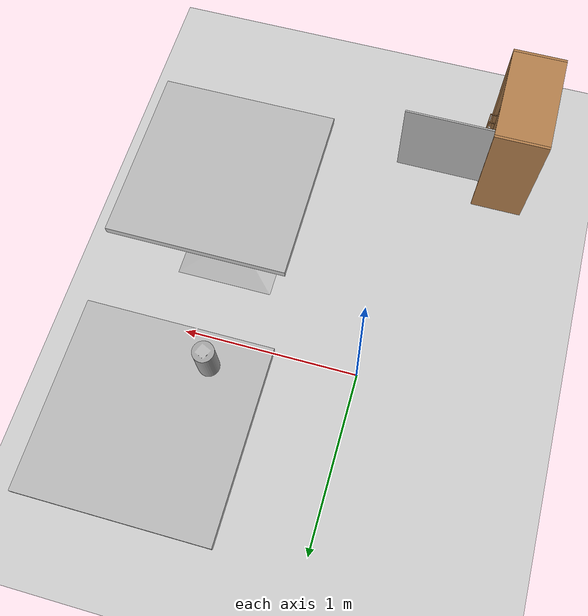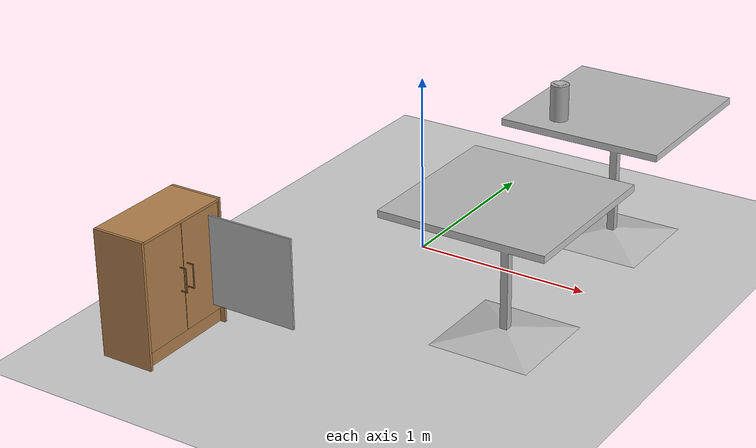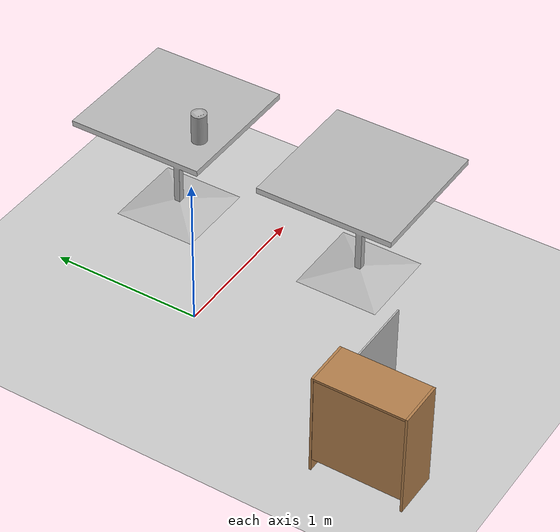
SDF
<sdf version="1.6">
 <world name="default">
  <light name="sun" type="directional">
   <pose>0 0 10 0 -0 0</pose>
   <diffuse>0.8 0.8 0.8 1</diffuse>
   <specular>0.2 0.2 0.2 1</specular>
   <attenuation>
    <range>1000</range>
    <constant>0.9</constant>
    <linear>0.01</linear>
    <quadratic>0.001</quadratic>
   </attenuation>
   <direction>-0.5 0.1 -0.9</direction>
  </light>
  <physics name="dart_1ms" default="1" type="dart">
   <max_step_size>0.001</max_step_size>
   <real_time_factor>1</real_time_factor>
   <real_time_update_rate>1000</real_time_update_rate>
   <dart><solver><solver_type>pgs</solver_type></solver></dart>
  </physics>
  <physics name="dart_2ms" default="0" type="dart">
   <max_step_size>0.002</max_step_size>
   <real_time_factor>1</real_time_factor>
   <real_time_update_rate>500</real_time_update_rate>
   <dart><solver><solver_type>pgs</solver_type></solver></dart>
  </physics>
  <physics name="dart_3ms" default="0" type="dart">
   <max_step_size>0.003</max_step_size>
   <real_time_factor>1</real_time_factor>
   <real_time_update_rate>333</real_time_update_rate>
   <dart><solver><solver_type>pgs</solver_type></solver></dart>
  </physics>
  <physics name="ode_1ms" default="0" type="ode">
   <max_step_size>0.001</max_step_size>
   <real_time_factor>1</real_time_factor>
   <real_time_update_rate>1000</real_time_update_rate>
  </physics>
  <physics name="ode_2ms" default="0" type="ode">
   <max_step_size>0.002</max_step_size>
   <real_time_factor>1</real_time_factor>
   <real_time_update_rate>500</real_time_update_rate>
  </physics>
  <physics name="ode_3ms" default="0" type="ode">
   <max_step_size>0.003</max_step_size>
   <real_time_factor>1</real_time_factor>
   <real_time_update_rate>333</real_time_update_rate>
  </physics>
  <model name="ground_plane">
   <static>1</static>
   <link name="link">
    <collision name="collision">
     <geometry><plane><normal>0 0 1</normal><size>100 100</size></plane></geometry>
     <surface><friction><ode><mu>100</mu><mu2>50</mu2></ode></friction></surface>
    </collision>
    <visual name="visual">
     <cast_shadows>0</cast_shadows>
     <geometry><plane><normal>0 0 1</normal><size>100 100</size></plane></geometry>
     <material>
      <script><uri>file://media/materials/scripts/gazebo.material</uri><name>Gazebo/Grey</name></script>
     </material>
    </visual>
   </link>
  </model>
  <gravity>0 0 -9.8</gravity>
  <magnetic_field>6e-06 2.3e-05 -4.2e-05</magnetic_field>
  <atmosphere type="adiabatic"/>
  <scene><ambient>0.4 0.4 0.4 1</ambient><background>0.7 0.7 0.7 1</background><shadows>1</shadows></scene>
  <spherical_coordinates>
   <surface_model>EARTH_WGS84</surface_model>
   <latitude_deg>0</latitude_deg>
   <longitude_deg>0</longitude_deg>
   <elevation>0</elevation>
   <heading_deg>0</heading_deg>
  </spherical_coordinates>
  <model name="cafe_table">
   <static>1</static>
   <link name="link">
    <collision name="surface">
     <pose>0 0 0.755 0 -0 0</pose>
     <geometry><box><size>0.913 0.913 0.04</size></box></geometry>
    </collision>
    <collision name="column">
     <pose>0 0 0.37 0 -0 0</pose>
     <geometry><box><size>0.042 0.042 0.74</size></box></geometry>
    </collision>
    <collision name="base">
     <pose>0 0 0.02 0 -0 0</pose>
     <geometry><box><size>0.56 0.56 0.04</size></box></geometry>
    </collision>
    <visual name="visual">
     <geometry><mesh><uri>model://cafe_table/meshes/cafe_table.dae</uri></mesh></geometry>
    </visual>
   </link>
   <pose>0.822635 0.670654 0 0 -0 0</pose>
  </model>
  <model name="cafe_table_0">
   <static>1</static>
   <link name="link">
    <collision name="surface">
     <pose>0 0 0.755 0 -0 0</pose>
     <geometry><box><size>0.913 0.913 0.04</size></box></geometry>
    </collision>
    <collision name="column">
     <pose>0 0 0.37 0 -0 0</pose>
     <geometry><box><size>0.042 0.042 0.74</size></box></geometry>
    </collision>
    <collision name="base">
     <pose>0 0 0.02 0 -0 0</pose>
     <geometry><box><size>0.56 0.56 0.04</size></box></geometry>
    </collision>
    <visual name="visual">
     <geometry><mesh><uri>model://cafe_table/meshes/cafe_table.dae</uri></mesh></geometry>
    </visual>
   </link>
   <pose>0.884797 -0.621823 0 0 -0 0</pose>
  </model>
  <model name="cabinet_door">
   <link name="cabinet">
    <pose>0 0 0.35 0 -0 0</pose>
    <inertial>
     <mass>16</mass>
     <inertia><ixx>1.59</ixx><ixy>0</ixy><ixz>0</ixz><iyy>1.12</iyy><iyz>0</iyz><izz>0.91</izz></inertia>
    </inertial>
    <collision name="back">
     <pose>-0.14 0 0.035 0 -0 0</pose>
     <geometry><box><size>0.015 0.585 0.6</size></box></geometry>
    </collision>
    <visual name="visual1">
     <pose>-0.14 0 0.035 0 -0 0</pose>
     <geometry><box><size>0.015 0.585 0.6</size></box></geometry>
     <material>
      <script><uri>file://media/materials/scripts/gazebo.material</uri><name>Gazebo/Wood</name></script>
     </material>
    </visual>
    <collision name="left_side">
     <pose>0 -0.2925 0 0 -0 0</pose>
     <geometry><box><size>0.3 0.015 0.7</size></box></geometry>
    </collision>
    <visual name="visual2">
     <pose>0 -0.2925 0 0 -0 0</pose>
     <geometry><box><size>0.3 0.015 0.7</size></box></geometry>
     <material>
      <script><uri>file://media/materials/scripts/gazebo.material</uri><name>Gazebo/Wood</name></script>
     </material>
    </visual>
    <collision name="right_side">
     <pose>0 0.2925 0 0 -0 0</pose>
     <geometry><box><size>0.3 0.015 0.7</size></box></geometry>
    </collision>
    <visual name="visual3">
     <pose>0 0.2925 0 0 -0 0</pose>
     <geometry><box><size>0.3 0.015 0.7</size></box></geometry>
     <material>
      <script><uri>file://media/materials/scripts/gazebo.material</uri><name>Gazebo/Wood</name></script>
     </material>
    </visual>
    <collision name="bottom">
     <pose>-0.002 0 -0.2525 0 -0 0</pose>
     <geometry><box><size>0.26 0.57 0.015</size></box></geometry>
    </collision>
    <visual name="visual4">
     <pose>-0.002 0 -0.2525 0 -0 0</pose>
     <geometry><box><size>0.26 0.57 0.015</size></box></geometry>
     <material>
      <script><uri>file://media/materials/scripts/gazebo.material</uri><name>Gazebo/Wood</name></script>
     </material>
    </visual>
    <collision name="top">
     <pose>0 0 0.3425 0 -0 0</pose>
     <geometry><box><size>0.3 0.57 0.015</size></box></geometry>
    </collision>
    <visual name="visual5">
     <pose>0 0 0.3425 0 -0 0</pose>
     <geometry><box><size>0.3 0.57 0.015</size></box></geometry>
     <material>
      <script><uri>file://media/materials/scripts/gazebo.material</uri><name>Gazebo/Wood</name></script>
     </material>
    </visual>
    <collision name="middle_shelf">
     <pose>-0.002 0 0.0475 0 -0 0</pose>
     <geometry><box><size>0.26 0.57 0.015</size></box></geometry>
    </collision>
    <visual name="visual6">
     <pose>-0.002 0 0.0475 0 -0 0</pose>
     <geometry><box><size>0.26 0.57 0.015</size></box></geometry>
     <material>
      <script><uri>file://media/materials/scripts/gazebo.material</uri><name>Gazebo/Wood</name></script>
     </material>
    </visual>
    <collision name="low_front">
     <pose>0.115 0 -0.3025 0 -0 0</pose>
     <geometry><box><size>0.015 0.57 0.09</size></box></geometry>
    </collision>
    <visual name="visual7">
     <pose>0.115 0 -0.3025 0 -0 0</pose>
     <geometry><box><size>0.015 0.57 0.09</size></box></geometry>
     <material>
      <script><uri>file://media/materials/scripts/gazebo.material</uri><name>Gazebo/Wood</name></script>
     </material>
    </visual>
   </link>
   <link name="right_door">
    <pose>0.135 0.2835 0.3875 0 -0 0</pose>
    <inertial>
     <mass>1.7</mass>
     <pose>0 -0.141 0 0 -0 0</pose>
     <inertia><ixx>0.06</ixx><ixy>0</ixy><ixz>0</ixz><iyy>0.49</iyy><iyz>0</iyz><izz>0.111</izz></inertia>
    </inertial>
    <collision name="right_face">
     <pose>0 -0.141 0 0 -0 0</pose>
     <geometry><box><size>0.015 0.282 0.595</size></box></geometry>
    </collision>
    <visual name="visual8">
     <pose>0 -0.141 0 0 -0 0</pose>
     <geometry><box><size>0.015 0.282 0.595</size></box></geometry>
     <material>
      <script><uri>file://media/materials/scripts/gazebo.material</uri><name>Gazebo/Wood</name></script>
     </material>
    </visual>
    <collision name="right_handle">
     <pose>0.04304 -0.2555 0 0 -0 0</pose>
     <geometry><box><size>0.005 0.005 0.136</size></box></geometry>
    </collision>
    <visual name="visual9">
     <pose>0.04304 -0.2555 0 0 -0 0</pose>
     <geometry><box><size>0.005 0.005 0.136</size></box></geometry>
     <material>
      <script><uri>file://media/materials/scripts/gazebo.material</uri><name>Gazebo/Wood</name></script>
     </material>
    </visual>
    <collision name="right_handle_up">
     <pose>0.02475 -0.2555 0.0656 0 -0 0</pose>
     <geometry><box><size>0.04 0.005 0.005</size></box></geometry>
    </collision>
    <visual name="visual10">
     <pose>0.02475 -0.2555 0.0656 0 -0 0</pose>
     <geometry><box><size>0.04 0.005 0.005</size></box></geometry>
     <material>
      <script><uri>file://media/materials/scripts/gazebo.material</uri><name>Gazebo/Wood</name></script>
     </material>
    </visual>
    <collision name="right_handle_bo">
     <pose>0.02475 -0.2555 -0.06542 0 -0 0</pose>
     <geometry><box><size>0.04 0.005 0.005</size></box></geometry>
    </collision>
    <visual name="visual11">
     <pose>0.02475 -0.2555 -0.06542 0 -0 0</pose>
     <geometry><box><size>0.04 0.005 0.005</size></box></geometry>
     <material>
      <script><uri>file://media/materials/scripts/gazebo.material</uri><name>Gazebo/Wood</name></script>
     </material>
    </visual>
    <visual name="visual_marker_0">
     <pose>0.007 -0.07 0 1.57075 0 1.57075</pose>
     <geometry><mesh><uri>model://marker_0/meshes/marker_0.dae</uri></mesh></geometry>
    </visual>
   </link>
   <joint name="right_joint" type="revolute">
    <parent>cabinet</parent>
    <child>right_door</child>
    <axis>
     <xyz>0 0 1</xyz>
     <limit><lower>-0.001</lower><upper>2.36</upper></limit>
     <dynamics>
      <damping>0.5</damping>
      <friction>0.1</friction>
      <spring_reference>0</spring_reference>
      <spring_stiffness>0</spring_stiffness>
     </dynamics>
     <use_parent_model_frame>1</use_parent_model_frame>
    </axis>
   </joint>
   <link name="left_door">
    <pose>0.135 -0.2835 0.3875 0 -0 0</pose>
    <inertial>
     <mass>1</mass>
     <pose>0 0.141 0 0 -0 0</pose>
     <inertia><ixx>0.06</ixx><ixy>0</ixy><ixz>0</ixz><iyy>0.49</iyy><iyz>0</iyz><izz>0.111</izz></inertia>
    </inertial>
    <collision name="left_face">
     <pose>0 0.141 0 0 -0 0</pose>
     <geometry><box><size>0.015 0.282 0.595</size></box></geometry>
    </collision>
    <visual name="visual12">
     <pose>0 0.141 0 0 -0 0</pose>
     <geometry><box><size>0.015 0.282 0.595</size></box></geometry>
     <material>
      <script><uri>file://media/materials/scripts/gazebo.material</uri><name>Gazebo/Wood</name></script>
     </material>
    </visual>
    <collision name="left_handle">
     <pose>0.04304 0.2555 0 0 -0 0</pose>
     <geometry><box><size>0.005 0.005 0.136</size></box></geometry>
    </collision>
    <visual name="visual13">
     <pose>0.04304 0.2555 0 0 -0 0</pose>
     <geometry><box><size>0.005 0.005 0.136</size></box></geometry>
     <material>
      <script><uri>file://media/materials/scripts/gazebo.material</uri><name>Gazebo/Wood</name></script>
     </material>
    </visual>
    <collision name="left_handle_up">
     <pose>0.02475 0.2555 0.0656 0 -0 0</pose>
     <geometry><box><size>0.04 0.005 0.005</size></box></geometry>
    </collision>
    <visual name="visual14">
     <pose>0.02475 0.2555 0.0656 0 -0 0</pose>
     <geometry><box><size>0.04 0.005 0.005</size></box></geometry>
     <material>
      <script><uri>file://media/materials/scripts/gazebo.material</uri><name>Gazebo/Wood</name></script>
     </material>
    </visual>
    <collision name="left_handle_bo">
     <pose>0.02475 0.2555 -0.06542 0 -0 0</pose>
     <geometry><box><size>0.04 0.005 0.005</size></box></geometry>
    </collision>
    <visual name="visual15">
     <pose>0.02475 0.2555 -0.06542 0 -0 0</pose>
     <geometry><box><size>0.04 0.005 0.005</size></box></geometry>
     <material>
      <script><uri>file://media/materials/scripts/gazebo.material</uri><name>Gazebo/Wood</name></script>
     </material>
    </visual>
   </link>
   <joint name="left_joint" type="revolute">
    <parent>cabinet</parent>
    <child>left_door</child>
    <axis>
     <xyz>0 0 1</xyz>
     <limit><lower>-2.36</lower><upper>0.001</upper></limit>
     <dynamics>
      <damping>0.5</damping>
      <friction>0.1</friction>
      <spring_reference>0</spring_reference>
      <spring_stiffness>0</spring_stiffness>
     </dynamics>
     <use_parent_model_frame>1</use_parent_model_frame>
    </axis>
   </joint>
   <pose>-0.550266 -1.54244 -0 -0 -0 -0</pose>
  </model>
  <model name="jar">
   <link name="link">
    <inertial>
     <mass>0.2</mass>
     <inertia><ixx>0.00079</ixx><ixy>0</ixy><ixz>0</ixz><iyy>0.00079</iyy><iyz>0</iyz><izz>0.00025</izz></inertia>
    </inertial>
    <collision name="collision">
     <geometry><mesh><uri>model://jar_marker/meshes/jar_marker.dae</uri></mesh></geometry>
     <surface>
      <friction><ode><mu>1</mu><mu2>1</mu2></ode></friction>
      <contact><ode><kp>1e+07</kp><kd>1</kd><min_depth>0.001</min_depth><max_vel>0.1</max_vel></ode></contact>
     </surface>
    </collision>
    <visual name="visual">
     <geometry><mesh><uri>model://jar_marker/meshes/jar_marker.dae</uri></mesh></geometry>
    </visual>
   </link>
   <pose>0.626717 0.371697 0.874999 1.9e-05 1.5e-05 -0.424175</pose>
  </model>
 </world>
</sdf>
